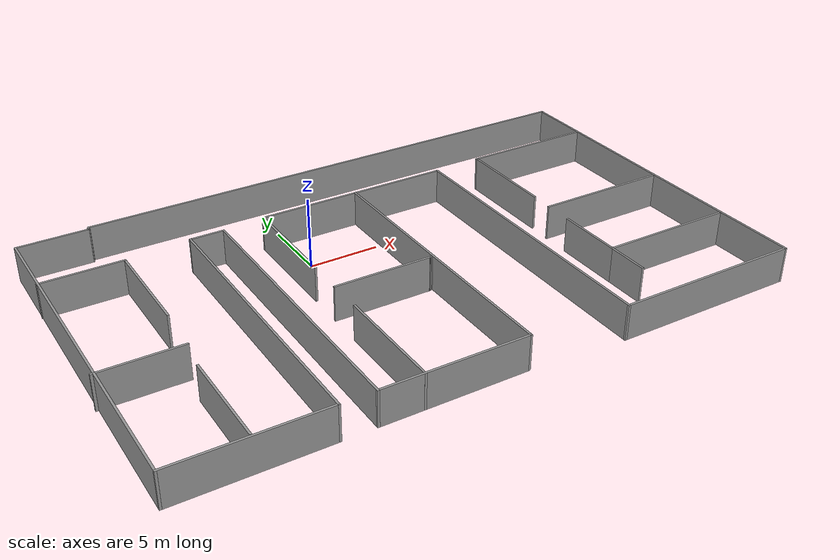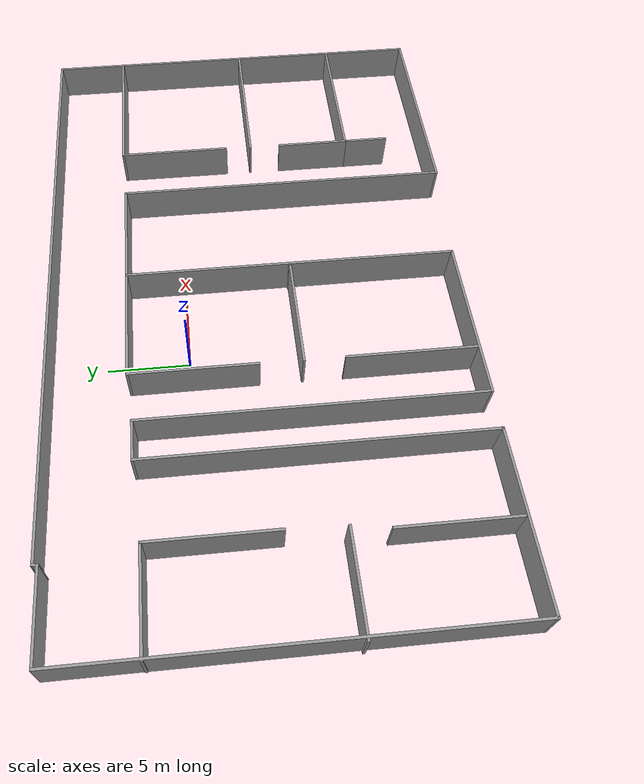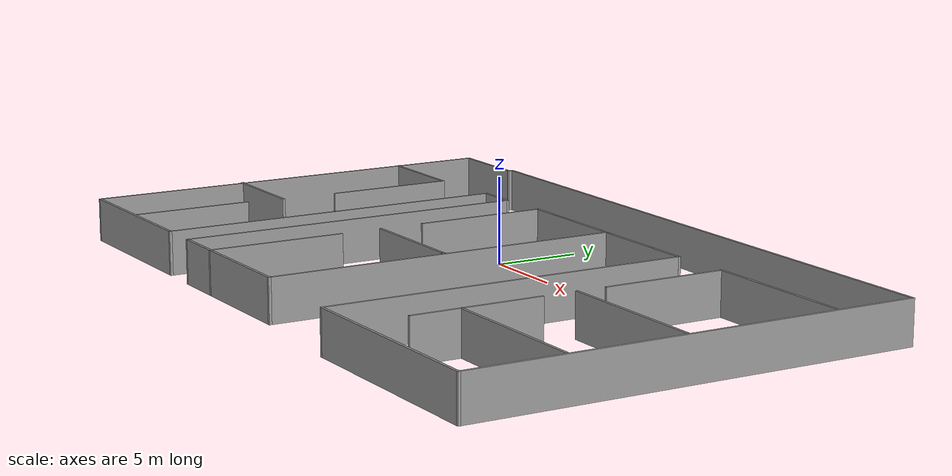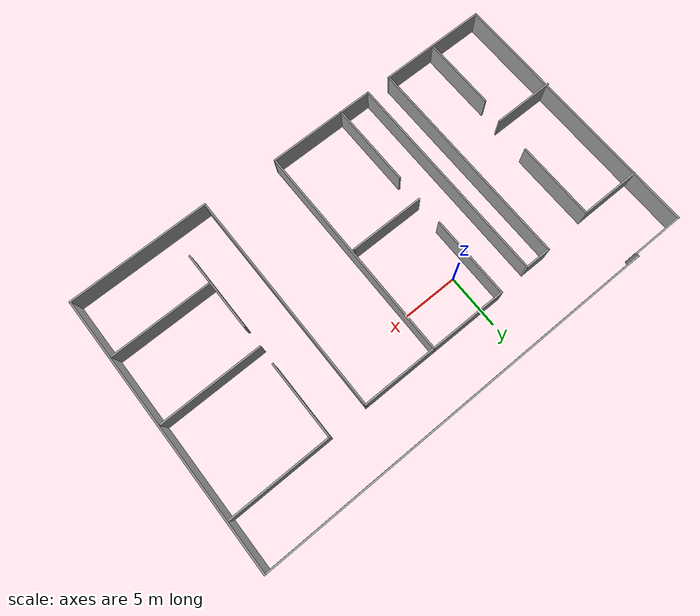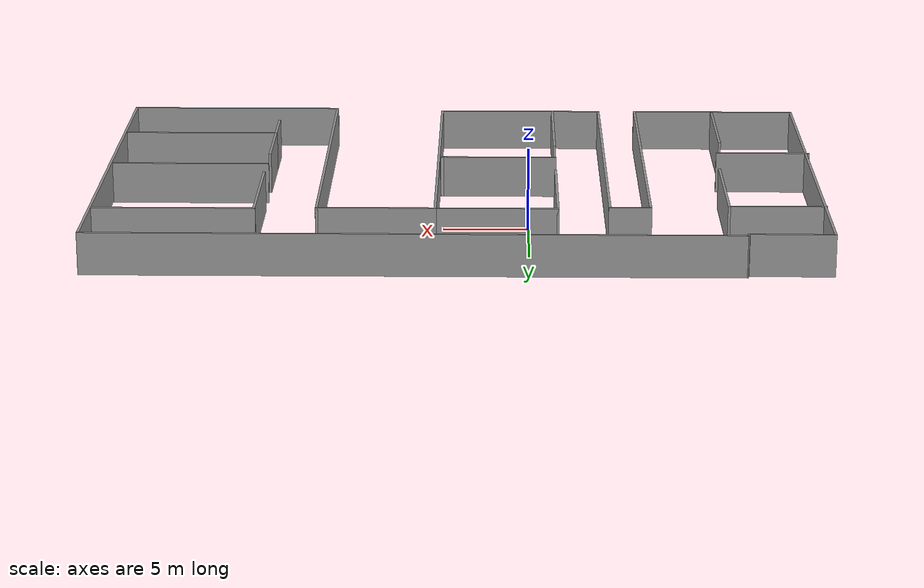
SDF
<?xml version='1.0'?>
<sdf version='1.7'>
  <model name='phybuilding.world'>
    <pose>4.03596 -4.57341 0 0 -0 0</pose>
    <link name='Wall_21'>
      <collision name='Wall_21_Collision'>
        <geometry>
          <box>
            <size>37.75 0.15 2.5</size>
          </box>
        </geometry>
        <pose>0 0 1.25 0 -0 0</pose>
      </collision>
      <visual name='Wall_21_Visual'>
        <pose>0 0 1.25 0 -0 0</pose>
        <geometry>
          <box>
            <size>37.75 0.15 2.5</size>
          </box>
        </geometry>
        <material>
          <script>
            <uri>file://media/materials/scripts/gazebo.material</uri>
            <name>Gazebo/Grey</name>
          </script>
          <ambient>1 1 1 1</ambient>
        </material>
        <meta>
          <layer>0</layer>
        </meta>
      </visual>
      <pose>2.53712 12.9184 0 0 -0 0</pose>
    </link>
    <link name='Wall_22'>
      <collision name='Wall_22_Collision'>
        <geometry>
          <box>
            <size>26 0.15 2.5</size>
          </box>
        </geometry>
        <pose>0 0 1.25 0 -0 0</pose>
      </collision>
      <visual name='Wall_22_Visual'>
        <pose>0 0 1.25 0 -0 0</pose>
        <geometry>
          <box>
            <size>26 0.15 2.5</size>
          </box>
        </geometry>
        <material>
          <script>
            <uri>file://media/materials/scripts/gazebo.material</uri>
            <name>Gazebo/Grey</name>
          </script>
          <ambient>1 1 1 1</ambient>
        </material>
        <meta>
          <layer>0</layer>
        </meta>
      </visual>
      <pose>21.3371 -0.006625 0 0 -0 -1.5708</pose>
    </link>
    <link name='Wall_23'>
      <collision name='Wall_23_Collision'>
        <geometry>
          <box>
            <size>13.25 0.15 2.5</size>
          </box>
        </geometry>
        <pose>0 0 1.25 0 -0 0</pose>
      </collision>
      <visual name='Wall_23_Visual'>
        <pose>0 0 1.25 0 -0 0</pose>
        <geometry>
          <box>
            <size>13.25 0.15 2.5</size>
          </box>
        </geometry>
        <material>
          <script>
            <uri>file://media/materials/scripts/gazebo.material</uri>
            <name>Gazebo/Grey</name>
          </script>
          <ambient>1 1 1 1</ambient>
        </material>
        <meta>
          <layer>0</layer>
        </meta>
      </visual>
      <pose>14.7871 -12.9316 0 0 -0 3.14159</pose>
    </link>
    <link name='Wall_24'>
      <collision name='Wall_24_Collision'>
        <geometry>
          <box>
            <size>21.25 0.15 2.5</size>
          </box>
        </geometry>
        <pose>0 0 1.25 0 -0 0</pose>
      </collision>
      <visual name='Wall_24_Visual'>
        <pose>0 0 1.25 0 -0 0</pose>
        <geometry>
          <box>
            <size>21.25 0.15 2.5</size>
          </box>
        </geometry>
        <material>
          <script>
            <uri>file://media/materials/scripts/gazebo.material</uri>
            <name>Gazebo/Grey</name>
          </script>
          <ambient>1 1 1 1</ambient>
        </material>
        <meta>
          <layer>0</layer>
        </meta>
      </visual>
      <pose>8.23711 -2.38163 0 0 -0 1.5708</pose>
    </link>
    <link name='Wall_25'>
      <collision name='Wall_25_Collision'>
        <geometry>
          <box>
            <size>7 0.15 2.5</size>
          </box>
        </geometry>
        <pose>0 0 1.25 0 -0 0</pose>
      </collision>
      <visual name='Wall_25_Visual'>
        <pose>0 0 1.25 0 -0 0</pose>
        <geometry>
          <box>
            <size>7 0.15 2.5</size>
          </box>
        </geometry>
        <material>
          <script>
            <uri>file://media/materials/scripts/gazebo.material</uri>
            <name>Gazebo/Grey</name>
          </script>
          <ambient>1 1 1 1</ambient>
        </material>
        <meta>
          <layer>0</layer>
        </meta>
      </visual>
      <pose>4.81212 8.16837 0 0 -0 3.14159</pose>
    </link>
    <link name='Wall_26'>
      <collision name='Wall_26_Collision'>
        <geometry>
          <box>
            <size>20.75 0.15 2.5</size>
          </box>
        </geometry>
        <pose>0 0 1.25 0 -0 0</pose>
      </collision>
      <visual name='Wall_26_Visual'>
        <pose>0 0 1.25 0 -0 0</pose>
        <geometry>
          <box>
            <size>20.75 0.15 2.5</size>
          </box>
        </geometry>
        <material>
          <script>
            <uri>file://media/materials/scripts/gazebo.material</uri>
            <name>Gazebo/Grey</name>
          </script>
          <ambient>1 1 1 1</ambient>
        </material>
        <meta>
          <layer>0</layer>
        </meta>
      </visual>
      <pose>1.38712 -2.13163 0 0 -0 -1.5708</pose>
    </link>
    <link name='Wall_27'>
      <collision name='Wall_27_Collision'>
        <geometry>
          <box>
            <size>10.25 0.15 2.5</size>
          </box>
        </geometry>
        <pose>0 0 1.25 0 -0 0</pose>
      </collision>
      <visual name='Wall_27_Visual'>
        <pose>0 0 1.25 0 -0 0</pose>
        <geometry>
          <box>
            <size>10.25 0.15 2.5</size>
          </box>
        </geometry>
        <material>
          <script>
            <uri>file://media/materials/scripts/gazebo.material</uri>
            <name>Gazebo/Grey</name>
          </script>
          <ambient>1 1 1 1</ambient>
        </material>
        <meta>
          <layer>0</layer>
        </meta>
      </visual>
      <pose>-3.66289 -12.4316 0 0 -0 3.14159</pose>
    </link>
    <link name='Wall_28'>
      <collision name='Wall_28_Collision'>
        <geometry>
          <box>
            <size>20.5 0.15 2.5</size>
          </box>
        </geometry>
        <pose>0 0 1.25 0 -0 0</pose>
      </collision>
      <visual name='Wall_28_Visual'>
        <pose>0 0 1.25 0 -0 0</pose>
        <geometry>
          <box>
            <size>20.5 0.15 2.5</size>
          </box>
        </geometry>
        <material>
          <script>
            <uri>file://media/materials/scripts/gazebo.material</uri>
            <name>Gazebo/Grey</name>
          </script>
          <ambient>1 1 1 1</ambient>
        </material>
        <meta>
          <layer>0</layer>
        </meta>
      </visual>
      <pose>-8.71288 -2.25663 0 0 -0 1.5708</pose>
    </link>
    <link name='Wall_29'>
      <collision name='Wall_29_Collision'>
        <geometry>
          <box>
            <size>2.5 0.15 2.5</size>
          </box>
        </geometry>
        <pose>0 0 1.25 0 -0 0</pose>
      </collision>
      <visual name='Wall_29_Visual'>
        <pose>0 0 1.25 0 -0 0</pose>
        <geometry>
          <box>
            <size>2.5 0.15 2.5</size>
          </box>
        </geometry>
        <material>
          <script>
            <uri>file://media/materials/scripts/gazebo.material</uri>
            <name>Gazebo/Grey</name>
          </script>
          <ambient>1 1 1 1</ambient>
        </material>
        <meta>
          <layer>0</layer>
        </meta>
      </visual>
      <pose>-9.88789 7.91838 0 0 -0 3.14159</pose>
    </link>
    <link name='Wall_30'>
      <collision name='Wall_30_Collision'>
        <geometry>
          <box>
            <size>20.5 0.15 2.5</size>
          </box>
        </geometry>
        <pose>0 0 1.25 0 -0 0</pose>
      </collision>
      <visual name='Wall_30_Visual'>
        <pose>0 0 1.25 0 -0 0</pose>
        <geometry>
          <box>
            <size>20.5 0.15 2.5</size>
          </box>
        </geometry>
        <material>
          <script>
            <uri>file://media/materials/scripts/gazebo.material</uri>
            <name>Gazebo/Grey</name>
          </script>
          <ambient>1 1 1 1</ambient>
        </material>
        <meta>
          <layer>0</layer>
        </meta>
      </visual>
      <pose>-11.0629 -2.25663 0 0 -0 -1.5708</pose>
    </link>
    <link name='Wall_31'>
      <collision name='Wall_31_Collision'>
        <geometry>
          <box>
            <size>10.25 0.15 2.5</size>
          </box>
        </geometry>
        <pose>0 0 1.25 0 -0 0</pose>
      </collision>
      <visual name='Wall_31_Visual'>
        <pose>0 0 1.25 0 -0 0</pose>
        <geometry>
          <box>
            <size>10.25 0.15 2.5</size>
          </box>
        </geometry>
        <material>
          <script>
            <uri>file://media/materials/scripts/gazebo.material</uri>
            <name>Gazebo/Grey</name>
          </script>
          <ambient>1 1 1 1</ambient>
        </material>
        <meta>
          <layer>0</layer>
        </meta>
      </visual>
      <pose>-16.1129 -12.4316 0 0 -0 3.14159</pose>
    </link>
    <link name='Wall_32'>
      <collision name='Wall_32_Collision'>
        <geometry>
          <box>
            <size>25.25 0.15 2.5</size>
          </box>
        </geometry>
        <pose>0 0 1.25 0 -0 0</pose>
      </collision>
      <visual name='Wall_32_Visual'>
        <pose>0 0 1.25 0 -0 0</pose>
        <geometry>
          <box>
            <size>25.25 0.15 2.5</size>
          </box>
        </geometry>
        <material>
          <script>
            <uri>file://media/materials/scripts/gazebo.material</uri>
            <name>Gazebo/Grey</name>
          </script>
          <ambient>1 1 1 1</ambient>
        </material>
        <meta>
          <layer>0</layer>
        </meta>
      </visual>
      <pose>-21.1629 0.118375 0 0 -0 1.5708</pose>
    </link>
    <link name='Wall_33'>
      <collision name='Wall_33_Collision'>
        <geometry>
          <box>
            <size>5 0.15 2.5</size>
          </box>
        </geometry>
        <pose>0 0 1.25 0 -0 0</pose>
      </collision>
      <visual name='Wall_33_Visual'>
        <pose>0 0 1.25 0 -0 0</pose>
        <geometry>
          <box>
            <size>5 0.15 2.5</size>
          </box>
        </geometry>
        <material>
          <script>
            <uri>file://media/materials/scripts/gazebo.material</uri>
            <name>Gazebo/Grey</name>
          </script>
          <ambient>1 1 1 1</ambient>
        </material>
        <meta>
          <layer>0</layer>
        </meta>
      </visual>
      <pose>-18.7379 12.6684 0 0 -0 0</pose>
    </link>
    <link name='Wall_34'>
      <collision name='Wall_34_Collision'>
        <geometry>
          <box>
            <size>0.404951 0.15 2.5</size>
          </box>
        </geometry>
        <pose>0 0 1.25 0 -0 0</pose>
      </collision>
      <visual name='Wall_34_Visual'>
        <pose>0 0 1.25 0 -0 0</pose>
        <geometry>
          <box>
            <size>0.404951 0.15 2.5</size>
          </box>
        </geometry>
        <material>
          <script>
            <uri>file://media/materials/scripts/gazebo.material</uri>
            <name>Gazebo/Grey</name>
          </script>
          <ambient>1 1 1 1</ambient>
        </material>
        <meta>
          <layer>0</layer>
        </meta>
      </visual>
      <pose>-16.2879 12.7934 0 0 -0 1.3734</pose>
    </link>
    <link name='Wall_36'>
      <collision name='Wall_36_Collision'>
        <geometry>
          <box>
            <size>9.5 0.15 2.5</size>
          </box>
        </geometry>
        <pose>0 0 1.25 0 -0 0</pose>
      </collision>
      <visual name='Wall_36_Visual'>
        <pose>0 0 1.25 0 -0 0</pose>
        <geometry>
          <box>
            <size>9.5 0.15 2.5</size>
          </box>
        </geometry>
        <material>
          <script>
            <uri>file://media/materials/scripts/gazebo.material</uri>
            <name>Gazebo/Grey</name>
          </script>
          <ambient>1 1 1 1</ambient>
        </material>
        <meta>
          <layer>0</layer>
        </meta>
      </visual>
      <pose>16.5158 8.31965 0 0 -0 3.14159</pose>
    </link>
    <link name='Wall_37'>
      <collision name='Wall_37_Collision'>
        <geometry>
          <box>
            <size>7.25 0.15 2.5</size>
          </box>
        </geometry>
        <pose>0 0 1.25 0 -0 0</pose>
      </collision>
      <visual name='Wall_37_Visual'>
        <pose>0 0 1.25 0 -0 0</pose>
        <geometry>
          <box>
            <size>7.25 0.15 2.5</size>
          </box>
        </geometry>
        <material>
          <script>
            <uri>file://media/materials/scripts/gazebo.material</uri>
            <name>Gazebo/Grey</name>
          </script>
          <ambient>1 1 1 1</ambient>
        </material>
        <meta>
          <layer>0</layer>
        </meta>
      </visual>
      <pose>11.8408 4.76965 0 0 -0 -1.5708</pose>
    </link>
    <link name='Wall_39'>
      <collision name='Wall_39_Collision'>
        <geometry>
          <box>
            <size>9.5 0.15 2.5</size>
          </box>
        </geometry>
        <pose>0 0 1.25 0 -0 0</pose>
      </collision>
      <visual name='Wall_39_Visual'>
        <pose>0 0 1.25 0 -0 0</pose>
        <geometry>
          <box>
            <size>9.5 0.15 2.5</size>
          </box>
        </geometry>
        <material>
          <script>
            <uri>file://media/materials/scripts/gazebo.material</uri>
            <name>Gazebo/Grey</name>
          </script>
          <ambient>1 1 1 1</ambient>
        </material>
        <meta>
          <layer>0</layer>
        </meta>
      </visual>
      <pose>16.4731 -0.510217 0 0 -0 0</pose>
    </link>
    <link name='Wall_41'>
      <collision name='Wall_41_Collision'>
        <geometry>
          <box>
            <size>4.75 0.15 2.5</size>
          </box>
        </geometry>
        <pose>0 0 1.25 0 -0 0</pose>
      </collision>
      <visual name='Wall_41_Visual'>
        <pose>0 0 1.25 0 -0 0</pose>
        <geometry>
          <box>
            <size>4.75 0.15 2.5</size>
          </box>
        </geometry>
        <material>
          <script>
            <uri>file://media/materials/scripts/gazebo.material</uri>
            <name>Gazebo/Grey</name>
          </script>
          <ambient>1 1 1 1</ambient>
        </material>
        <meta>
          <layer>0</layer>
        </meta>
      </visual>
      <pose>11.7981 -4.88576 0 0 -0 -1.5708</pose>
    </link>
    <link name='Wall_42'>
      <collision name='Wall_42_Collision'>
        <geometry>
          <box>
            <size>9.5 0.15 2.5</size>
          </box>
        </geometry>
        <pose>0 0 1.25 0 -0 0</pose>
      </collision>
      <visual name='Wall_42_Visual'>
        <pose>0 0 1.25 0 -0 0</pose>
        <geometry>
          <box>
            <size>9.5 0.15 2.5</size>
          </box>
        </geometry>
        <material>
          <script>
            <uri>file://media/materials/scripts/gazebo.material</uri>
            <name>Gazebo/Grey</name>
          </script>
          <ambient>1 1 1 1</ambient>
        </material>
        <meta>
          <layer>0</layer>
        </meta>
      </visual>
      <pose>16.4731 -7.18576 0 0 -0 0</pose>
    </link>
    <link name='Wall_44'>
      <collision name='Wall_44_Collision'>
        <geometry>
          <box>
            <size>3 0.15 2.5</size>
          </box>
        </geometry>
        <pose>0 0 1.25 0 -0 0</pose>
      </collision>
      <visual name='Wall_44_Visual'>
        <pose>0 0 1.25 0 -0 0</pose>
        <geometry>
          <box>
            <size>3 0.15 2.5</size>
          </box>
        </geometry>
        <material>
          <script>
            <uri>file://media/materials/scripts/gazebo.material</uri>
            <name>Gazebo/Grey</name>
          </script>
          <ambient>1 1 1 1</ambient>
        </material>
        <meta>
          <layer>0</layer>
        </meta>
      </visual>
      <pose>11.7981 -8.61076 0 0 -0 -1.5708</pose>
    </link>
    <link name='Wall_46'>
      <collision name='Wall_46_Collision'>
        <geometry>
          <box>
            <size>7.25 0.15 2.5</size>
          </box>
        </geometry>
        <pose>0 0 1.25 0 -0 0</pose>
      </collision>
      <visual name='Wall_46_Visual'>
        <pose>0 0 1.25 0 -0 0</pose>
        <geometry>
          <box>
            <size>7.25 0.15 2.5</size>
          </box>
        </geometry>
        <material>
          <script>
            <uri>file://media/materials/scripts/gazebo.material</uri>
            <name>Gazebo/Grey</name>
          </script>
          <ambient>1 1 1 1</ambient>
        </material>
        <meta>
          <layer>0</layer>
        </meta>
      </visual>
      <pose>-2.16289 8.16837 0 0 -0 3.14159</pose>
    </link>
    <link name='Wall_47'>
      <collision name='Wall_47_Collision'>
        <geometry>
          <box>
            <size>7.75 0.15 2.5</size>
          </box>
        </geometry>
        <pose>0 0 1.25 0 -0 0</pose>
      </collision>
      <visual name='Wall_47_Visual'>
        <pose>0 0 1.25 0 -0 0</pose>
        <geometry>
          <box>
            <size>7.75 0.15 2.5</size>
          </box>
        </geometry>
        <material>
          <script>
            <uri>file://media/materials/scripts/gazebo.material</uri>
            <name>Gazebo/Grey</name>
          </script>
          <ambient>1 1 1 1</ambient>
        </material>
        <meta>
          <layer>0</layer>
        </meta>
      </visual>
      <pose>-5.71288 4.36838 0 0 -0 -1.5708</pose>
    </link>
    <link name='Wall_49'>
      <collision name='Wall_49_Collision'>
        <geometry>
          <box>
            <size>7 0.15 2.5</size>
          </box>
        </geometry>
        <pose>0 0 1.25 0 -0 0</pose>
      </collision>
      <visual name='Wall_49_Visual'>
        <pose>0 0 1.25 0 -0 0</pose>
        <geometry>
          <box>
            <size>7 0.15 2.5</size>
          </box>
        </geometry>
        <material>
          <script>
            <uri>file://media/materials/scripts/gazebo.material</uri>
            <name>Gazebo/Grey</name>
          </script>
          <ambient>1 1 1 1</ambient>
        </material>
        <meta>
          <layer>0</layer>
        </meta>
      </visual>
      <pose>-2.3111 -2.07624 0 0 -0 0</pose>
    </link>
    <link name='Wall_50'>
      <collision name='Wall_50_Collision'>
        <geometry>
          <box>
            <size>0.25 0.15 2.5</size>
          </box>
        </geometry>
        <pose>0 0 1.25 0 -0 0</pose>
      </collision>
      <visual name='Wall_50_Visual'>
        <pose>0 0 1.25 0 -0 0</pose>
        <geometry>
          <box>
            <size>0.25 0.15 2.5</size>
          </box>
        </geometry>
        <material>
          <script>
            <uri>file://media/materials/scripts/gazebo.material</uri>
            <name>Gazebo/Grey</name>
          </script>
          <ambient>1 1 1 1</ambient>
        </material>
        <meta>
          <layer>0</layer>
        </meta>
      </visual>
      <pose>1.1622 -2.0633 0 0 -0 0.261799</pose>
    </link>
    <link name='Wall_52'>
      <collision name='Wall_52_Collision'>
        <geometry>
          <box>
            <size>8 0.15 2.5</size>
          </box>
        </geometry>
        <pose>0 0 1.25 0 -0 0</pose>
      </collision>
      <visual name='Wall_52_Visual'>
        <pose>0 0 1.25 0 -0 0</pose>
        <geometry>
          <box>
            <size>8 0.15 2.5</size>
          </box>
        </geometry>
        <material>
          <script>
            <uri>file://media/materials/scripts/gazebo.material</uri>
            <name>Gazebo/Grey</name>
          </script>
          <ambient>1 1 1 1</ambient>
        </material>
        <meta>
          <layer>0</layer>
        </meta>
      </visual>
      <pose>-5.7361 -8.50964 0 0 -0 -1.5708</pose>
    </link>
    <link name='Wall_54'>
      <collision name='Wall_54_Collision'>
        <geometry>
          <box>
            <size>5.75 0.15 2.5</size>
          </box>
        </geometry>
        <pose>0 0 1.25 0 -0 0</pose>
      </collision>
      <visual name='Wall_54_Visual'>
        <pose>0 0 1.25 0 -0 0</pose>
        <geometry>
          <box>
            <size>5.75 0.15 2.5</size>
          </box>
        </geometry>
        <material>
          <script>
            <uri>file://media/materials/scripts/gazebo.material</uri>
            <name>Gazebo/Grey</name>
          </script>
          <ambient>1 1 1 1</ambient>
        </material>
        <meta>
          <layer>0</layer>
        </meta>
      </visual>
      <pose>-18.4148 7.55968 0 0 -0 0</pose>
    </link>
    <link name='Wall_55'>
      <collision name='Wall_55_Collision'>
        <geometry>
          <box>
            <size>7.5 0.15 2.5</size>
          </box>
        </geometry>
        <pose>0 0 1.25 0 -0 0</pose>
      </collision>
      <visual name='Wall_55_Visual'>
        <pose>0 0 1.25 0 -0 0</pose>
        <geometry>
          <box>
            <size>7.5 0.15 2.5</size>
          </box>
        </geometry>
        <material>
          <script>
            <uri>file://media/materials/scripts/gazebo.material</uri>
            <name>Gazebo/Grey</name>
          </script>
          <ambient>1 1 1 1</ambient>
        </material>
        <meta>
          <layer>0</layer>
        </meta>
      </visual>
      <pose>-15.6148 3.88468 0 0 -0 -1.5708</pose>
    </link>
    <link name='Wall_57'>
      <collision name='Wall_57_Collision'>
        <geometry>
          <box>
            <size>5.75 0.15 2.5</size>
          </box>
        </geometry>
        <pose>0 0 1.25 0 -0 0</pose>
      </collision>
      <visual name='Wall_57_Visual'>
        <pose>0 0 1.25 0 -0 0</pose>
        <geometry>
          <box>
            <size>5.75 0.15 2.5</size>
          </box>
        </geometry>
        <material>
          <script>
            <uri>file://media/materials/scripts/gazebo.material</uri>
            <name>Gazebo/Grey</name>
          </script>
          <ambient>1 1 1 1</ambient>
        </material>
        <meta>
          <layer>0</layer>
        </meta>
      </visual>
      <pose>-18.5371 -3.17749 0 0 -0 0</pose>
    </link>
    <link name='Wall_59'>
      <collision name='Wall_59_Collision'>
        <geometry>
          <box>
            <size>7 0.15 2.5</size>
          </box>
        </geometry>
        <pose>0 0 1.25 0 -0 0</pose>
      </collision>
      <visual name='Wall_59_Visual'>
        <pose>0 0 1.25 0 -0 0</pose>
        <geometry>
          <box>
            <size>7 0.15 2.5</size>
          </box>
        </geometry>
        <material>
          <script>
            <uri>file://media/materials/scripts/gazebo.material</uri>
            <name>Gazebo/Grey</name>
          </script>
          <ambient>1 1 1 1</ambient>
        </material>
        <meta>
          <layer>0</layer>
        </meta>
      </visual>
      <pose>-16.045 -8.83558 0 0 -0 -1.5708</pose>
    </link>
    <static>1</static>
  </model>
</sdf>
